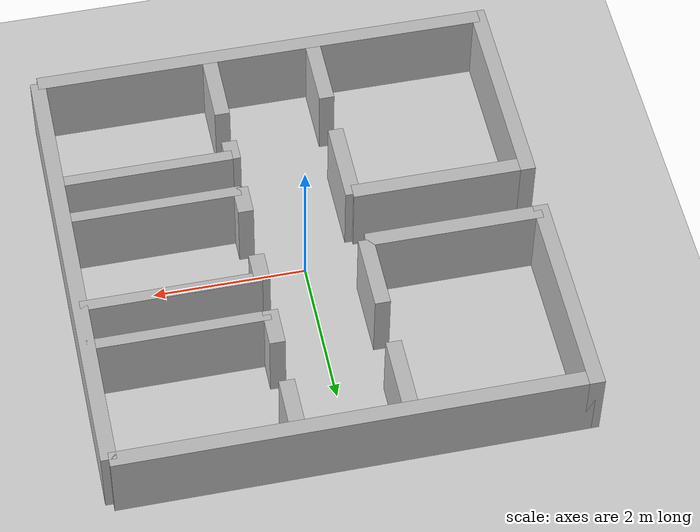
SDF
<?xml version="1.0" ?>
<sdf version="1.9">

<world name="dfs_world">

  <plugin filename="gz-sim-physics-system" name="gz::sim::systems::Physics"/>
  <plugin filename="gz-sim-user-commands-system" name="gz::sim::systems::UserCommands"/>
  <plugin filename="gz-sim-scene-broadcaster-system" name="gz::sim::systems::SceneBroadcaster"/>

  <plugin filename="gz-sim-sensors-system"
          name="gz::sim::systems::Sensors">
    <render_engine>ogre2</render_engine>
  </plugin>
  cc
  <light type="directional" name="main_light">
    <cast_shadows>false</cast_shadows>
    <pose>0 0 10 0 0 0</pose>
    <diffuse>1 1 1 1</diffuse>
    <specular>0.5 0.5 0.5 1</specular>
    <direction>-0.5 0.1 -1</direction>
  </light>

  <model name="ground_plane">
    <static>true</static>
    <link name="link">
      <collision name="collision">
        <geometry>
          <plane>
            <normal>0 0 1</normal>
            <size>10 10</size>
          </plane>
        </geometry>
      </collision>
      <visual name="visual">
        <geometry>
          <plane>
            <normal>0 0 1</normal>
            <size>10 10</size>
          </plane>
        </geometry>
        <material>
          <ambient>0.8 0.8 0.8 1</ambient>
          <diffuse>0.8 0.8 0.8 1</diffuse>
        </material>
      </visual>
    </link>
  </model>

  <model name="rotated_dfs_map">
    <static>true</static>
    <pose>0 0 0 0 0 -1.5708</pose>

    <!-- outer walls -->
    <model name="wall_top">
      <static>true</static>
      <pose>0 3 0.5 0 0 0</pose>
      <link name="link">
        <collision name="collision"><geometry><box><size>6 0.2 1</size></box></geometry></collision>
        <visual name="visual"><geometry><box><size>6 0.2 1</size></box></geometry></visual>
      </link>
    </model>

    <model name="wall_left">
      <static>true</static>
      <pose>-3 0 0.5 0 0 0</pose>
      <link name="link">
        <collision name="collision"><geometry><box><size>0.2 6 1</size></box></geometry></collision>
        <visual name="visual"><geometry><box><size>0.2 6 1</size></box></geometry></visual>
      </link>
    </model>

    <model name="wall_right">
      <static>true</static>
      <pose>3 0 0.5 0 0 0</pose>
      <link name="link">
        <collision name="collision"><geometry><box><size>0.2 6 1</size></box></geometry></collision>
        <visual name="visual"><geometry><box><size>0.2 6 1</size></box></geometry></visual>
      </link>
    </model>

    <!-- bottom wall split: center entrance -->
    <model name="wall_bottom_left">
      <static>true</static>
      <pose>-1.7 -3 0.5 0 0 0</pose>
      <link name="link">
        <collision name="collision"><geometry><box><size>2.8 0.2 1</size></box></geometry></collision>
        <visual name="visual"><geometry><box><size>2.8 0.2 1</size></box></geometry></visual>
      </link>
    </model>

    <model name="wall_bottom_right">
      <static>true</static>
      <pose>1.7 -3 0.5 0 0 0</pose>
      <link name="link">
        <collision name="collision"><geometry><box><size>2.8 0.2 1</size></box></geometry></collision>
        <visual name="visual"><geometry><box><size>2.8 0.2 1</size></box></geometry></visual>
      </link>
    </model>

      <!-- corridor upper boundary with door openings to top rooms -->

    <model name="corridor_top_left_room_left">
      <static>true</static>
      <pose>-2.6 0.7 0.5 0 0 0</pose>
      <link name="link">
        <collision name="collision"><geometry><box><size>0.9 0.2 1</size></box></geometry></collision>
        <visual name="visual"><geometry><box><size>0.6 0.2 1</size></box></geometry></visual>
      </link>
    </model>

    <model name="corridor_top_left_room_right">
      <static>true</static>
      <pose>-1.48 0.7 0.5 0 0 0</pose>
      <link name="link">
        <collision name="collision"><geometry><box><size>0.3 0.2 1</size></box></geometry></collision>
        <visual name="visual"><geometry><box><size>0.5 0.2 1</size></box></geometry></visual>
      </link>
    </model>

    <model name="corridor_top_mid_left">
      <static>true</static>
      <pose>-0.55 0.7 0.5 0 0 0</pose>
      <link name="link">
        <collision name="collision"><geometry><box><size>0.3 0.2 1</size></box></geometry></collision>
        <visual name="visual"><geometry><box><size>0.4 0.2 1</size></box></geometry></visual>
      </link>
    </model>

    <model name="corridor_top_mid_right">
      <static>true</static>
      <pose>0.55 0.7 0.5 0 0 0</pose>
      <link name="link">
        <collision name="collision"><geometry><box><size>0.3 0.2 1</size></box></geometry></collision>
        <visual name="visual"><geometry><box><size>0.4 0.2 1</size></box></geometry></visual>
      </link>
    </model>

    <model name="corridor_top_right_room_left">
      <static>true</static>
      <pose>1.38 0.7 0.5 0 0 0</pose>
      <link name="link">
        <collision name="collision"><geometry><box><size>0.3 0.2 1</size></box></geometry></collision>
        <visual name="visual"><geometry><box><size>0.3 0.2 1</size></box></geometry></visual>
      </link>
    </model>

    <model name="corridor_top_right_room_right">
      <static>true</static>
      <pose>2.45 0.7 0.5 0 0 0</pose>
      <link name="link">
        <collision name="collision"><geometry><box><size>0.9 0.2 1</size></box></geometry></collision>
        <visual name="visual"><geometry><box><size>0.9 0.2 1</size></box></geometry></visual>
      </link>
    </model>

      <!-- corridor lower boundary with door openings to bottom rooms -->

    <model name="corridor_bottom_left_room_left">
      <static>true</static>
      <pose>-2.45 -0.7 0.5 0 0 0</pose>
      <link name="link">
        <collision name="collision"><geometry><box><size>0.9 0.2 1</size></box></geometry></collision>
        <visual name="visual"><geometry><box><size>0.9 0.2 1</size></box></geometry></visual>
      </link>
    </model>

    <model name="corridor_bottom_left_room_right">
      <static>true</static>
      <pose>-0.9 -0.7 0.5 0 0 0</pose>
      <link name="link">
        <collision name="collision"><geometry><box><size>0.5 0.2 1</size></box></geometry></collision>
        <visual name="visual"><geometry><box><size>1.0 0.2 1</size></box></geometry></visual>
      </link>
    </model>

    <model name="corridor_bottom_right_room_left">
      <static>true</static>
      <pose>0.9 -0.7 0.5 0 0 0</pose>
      <link name="link">
        <collision name="collision"><geometry><box><size>0.5 0.2 1</size></box></geometry></collision>
        <visual name="visual"><geometry><box><size>1.1 0.2 1</size></box></geometry></visual>
      </link>
    </model>

    <model name="corridor_bottom_right_room_right">
      <static>true</static>
      <pose>2.45 -0.7 0.5 0 0 0</pose>
      <link name="link">
        <collision name="collision"><geometry><box><size>0.9 0.2 1</size></box></geometry></collision>
        <visual name="visual"><geometry><box><size>0.9 0.2 1</size></box></geometry></visual>
      </link>
    </model>

    <!-- top room passage walls -->
    <model name="top_passage_1_left_wall">
      <static>true</static>
      <pose>-1.30 1.85 0.5 0 0 0</pose>
      <link name="link">
        <collision name="collision"><geometry><box><size>0.15 2.3 1</size></box></geometry></collision>
        <visual name="visual"><geometry><box><size>0.15 2.3 1</size></box></geometry></visual>
      </link>
    </model>

    <model name="top_passage_1_right_wall">
      <static>true</static>
      <pose>-0.70 1.85 0.5 0 0 0</pose>
      <link name="link">
        <collision name="collision"><geometry><box><size>0.15 2.3 1</size></box></geometry></collision>
        <visual name="visual"><geometry><box><size>0.15 2.3 1</size></box></geometry></visual>
      </link>
    </model>

    <model name="top_passage_2_left_wall">
      <static>true</static>
      <pose>0.70 1.85 0.5 0 0 0</pose>
      <link name="link">
        <collision name="collision"><geometry><box><size>0.15 2.3 1</size></box></geometry></collision>
        <visual name="visual"><geometry><box><size>0.15 2.3 1</size></box></geometry></visual>
      </link>
    </model>

    <model name="top_passage_2_right_wall">
      <static>true</static>
      <pose>1.30 1.85 0.5 0 0 0</pose>
      <link name="link">
        <collision name="collision"><geometry><box><size>0.15 2.3 1</size></box></geometry></collision>
        <visual name="visual"><geometry><box><size>0.15 2.3 1</size></box></geometry></visual>
      </link>
    </model>

    <!-- bottom vertical entrance corridor -->
    <model name="vertical_left">
      <static>true</static>
      <pose>-0.4 -1.85 0.5 0 0 0</pose>
      <link name="link">
        <collision name="collision"><geometry><box><size>0.2 2.3 1</size></box></geometry></collision>
        <visual name="visual"><geometry><box><size>0.2 2.3 1</size></box></geometry></visual>
      </link>
    </model>

    <model name="vertical_right">
      <static>true</static>
      <pose>0.4 -1.85 0.5 0 0 0</pose>
      <link name="link">
        <collision name="collision"><geometry><box><size>0.2 2.3 1</size></box></geometry></collision>
        <visual name="visual"><geometry><box><size>0.2 2.3 1</size></box></geometry></visual>
      </link>
    </model>
  </model>

</world>
</sdf>
